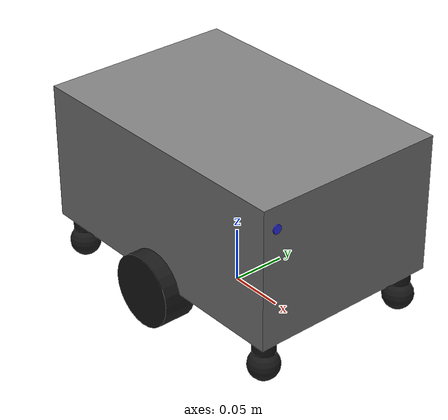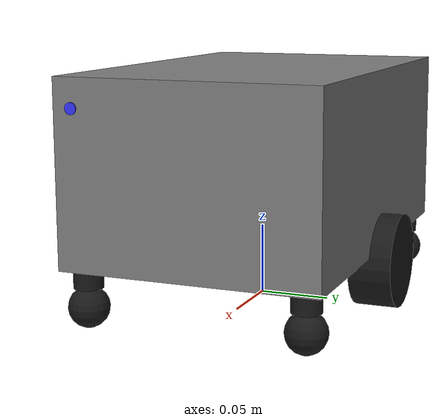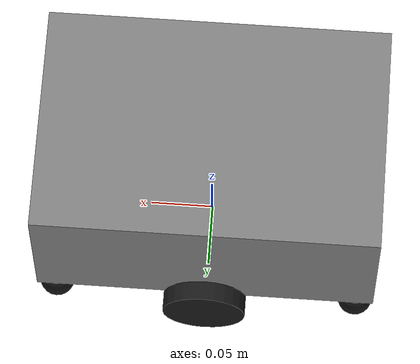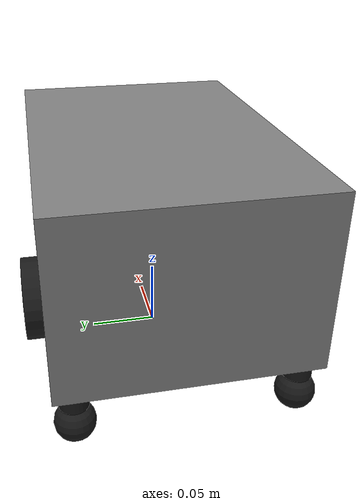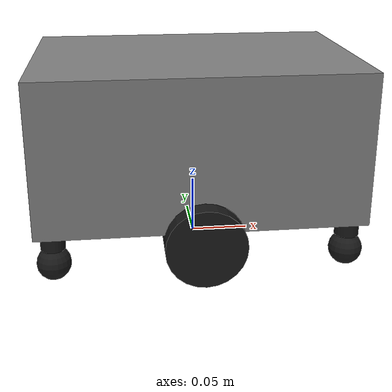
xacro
<?xml version="1.0" encoding="utf-8"?>
<robot xmlns:xacro="http://www.ros.org/wiki/xacro"  name="amr">

    <xacro:arg name="sim_mode" default="False"/>

    <xacro:include filename="inertial_macros.xacro" />
    <xacro:include filename="robot_core.xacro" />
    <xacro:include filename="camera.xacro" />
    <xacro:include filename="ros2_control.xacro" />
</robot>

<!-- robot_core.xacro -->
<robot xmlns:xacro="http://www.ros.org/wiki/xacro">

  <!--  ROBOT PROPERTIES                                            -->
  <xacro:property name="chassis_length"  value="0.27" />
  <xacro:property name="chassis_width"   value="0.18" />
  <xacro:property name="chassis_height"  value="0.127" />
  <xacro:property name="chassis_mass"    value="1.5" />

  <xacro:property name="wheel_radius"    value="0.033" />
  <xacro:property name="wheel_thickness" value="0.03" />
  <xacro:property name="wheel_mass"      value="0.05" />
  <!-- Wheel positions relative to chassis frame (at chassis centre) -->
  <xacro:property name="wheel_x" value="0.0" />
  <xacro:property name="wheel_y" value="0.09" />
  <xacro:property name="wheel_z" value="-0.0705" />

  <xacro:property name="support_radius"  value="0.014" />
  <xacro:property name="support_mass"    value="0.05" />
  <xacro:property name="support_x"       value="0.121" />
  <xacro:property name="support_y"       value="0.076" />
  <xacro:property name="support_z"       value="-0.0895" />

  <xacro:property name="imu_mass"  value="0.01" />
  <xacro:property name="imu_size"  value="0.02" />

  <!-- The robot's base link is placed at the ground contact point -->
  <xacro:property name="base_z_offset" value="0.0" />

  <!--  MATERIALS                                                   -->
  <material name="grey">
    <color rgba="0.5 0.5 0.5 1.0"/>
  </material>
  <material name="black">
    <color rgba="0.1 0.1 0.1 1.0"/>
  </material>
  <material name="white">
    <color rgba="1 1 1 1" />
  </material>
  <material name="orange">
    <color rgba="1 0.3 0.1 1"/>
  </material>
  <material name="blue">
    <color rgba="0.2 0.2 1 1"/>
  </material>
  <material name="red">
    <color rgba="1 0 0 1"/>
  </material>

  <!--  BASE LINKS AND ROOT                                         -->
  <!-- The base_footprint is the virtual ground contact point -->
  <link name="base_footprint" />

  <joint name="base_footprint_joint" type="fixed">
    <parent link="base_footprint" />
    <child link="base_link" />
    <origin xyz="0 0 ${base_z_offset}" rpy="0 0 0" />
  </joint>

  <!-- The base_link is the main frame, located at the chassis centre height? -->
  <!-- We'll place base_link at the chassis centre to simplify transforms. -->
  <!-- But original had base_link at (0,0,0) and chassis joint offset. We'll keep that -->
  <!-- for compatibility: base_link is at (0,0,0) and chassis is offset. -->
  <!-- However, we now have base_footprint at ground, and base_link at z=0. So chassis -->
  <!-- centre is at z=0.115, as before. -->
  <link name="base_link" />

  <!--  CHASSIS                                                     -->
  <joint name="base_link_chassis_joint" type="fixed">
    <parent link="base_link" />
    <child link="chassis" />
    <origin xyz="0 0 ${chassis_height/2 + 0.04}" rpy="0 0 0" />
  </joint>

  <link name="chassis">
    <visual>
      <geometry>
        <box size="${chassis_length} ${chassis_width} ${chassis_height}" />
      </geometry>
      <material name="grey" />
    </visual>
    <collision>
      <geometry>
        <box size="${chassis_length} ${chassis_width} ${chassis_height}" />
      </geometry>
    </collision>
    <xacro:inertial_box mass="${chassis_mass}"
                        x="${chassis_length}"
                        y="${chassis_width}"
                        z="${chassis_height}">
      <origin xyz="0 0 0" rpy="0 0 0"/>
    </xacro:inertial_box>
  </link>

  <gazebo reference="chassis">
    <material>Gazebo/Orange</material>
  </gazebo>

  <!--  MACRO: CREATE A DRIVE WHEEL                                 -->
  <xacro:macro name="drive_wheel" params="name side x y z">
    <!-- side: 'left' or 'right' to set joint axis sign? Actually we use same axis, -->
    <!-- but we can set different orientation? No, we keep same. -->
    <link name="${name}_wheel">
      <visual>
        <geometry>
          <cylinder radius="${wheel_radius}" length="${wheel_thickness}" />
        </geometry>
        <material name="black" />
      </visual>
      <collision>
        <geometry>
          <cylinder radius="${wheel_radius}" length="${wheel_thickness}" />
        </geometry>
      </collision>
      <xacro:inertial_cylinder mass="${wheel_mass}"
                               length="${wheel_thickness}"
                               radius="${wheel_radius}" >
        <origin xyz="0 0 0" rpy="0 0 0"/>
      </xacro:inertial_cylinder>
    </link>

    <joint name="${name}_wheel_joint" type="fixed">
      <parent link="chassis" />
      <child link="${name}_wheel" />
      <!-- The wheel is rotated so its axis aligns with Y (roll direction) -->
      <origin xyz="${x} ${y} ${z}" rpy="${pi/2} 0 0" />
      <axis xyz="0 0 1" />
      <dynamics damping="0.0" friction="0.0" />
    </joint>

    <gazebo reference="${name}_wheel">
      <material>Gazebo/Blue</material>
      <mu1>0.8</mu1>
      <mu2>0.8</mu2>
      <friction>1.0</friction>
    </gazebo>
  </xacro:macro>

  <!-- Instantiate the two drive wheels -->
  <xacro:drive_wheel name="left"  side="left"  x="${wheel_x}" y="-${wheel_y}" z="${wheel_z}" />
  <xacro:drive_wheel name="right" side="right" x="${wheel_x}" y="${wheel_y}"  z="${wheel_z}" />

  <!--  MACRO: CREATE A SUPPORT CASTER (sphere)                     -->
  <xacro:macro name="support_caster" params="name x y z">
    <link name="support_${name}">
      <visual name="support_caster">
        <origin xyz="0 0 0" rpy="0 0 0"/>
        <geometry>
          <sphere radius="${support_radius}" />
        </geometry>
        <material name="black" />
      </visual>
      <visual name="support_caster_stand">
        <origin xyz="0 0 0.02" rpy="0 0 ${-pi/2}"/>
        <geometry>
          <cylinder radius="0.01" length="0.014"/>
        </geometry>
        <material name="black"/>
      </visual>
      <collision>
        <geometry>
          <sphere radius="${support_radius}" />
        </geometry>
      </collision>
      <xacro:inertial_sphere mass="${support_mass}"
                             radius="${support_radius}" >
        <origin xyz="0 0 0" rpy="0 0 0"/>
      </xacro:inertial_sphere>
    </link>

    <joint name="support_${name}_joint" type="fixed">
      <parent link="chassis" />
      <child link="support_${name}" />
      <origin xyz="${x} ${y} ${z}" rpy="0 0 0" />
    </joint>

    <gazebo reference="support_${name}">
      <mu1>0.01</mu1>
      <mu2>0.01</mu2>
      <friction>0.01</friction>
    </gazebo>
  </xacro:macro>

  <!-- Four corners -->
  <xacro:support_caster name="front_left"  x="${support_x}"  y="${support_y}"  z="${support_z}" />
  <xacro:support_caster name="front_right" x="${support_x}"  y="-${support_y}" z="${support_z}" />
  <xacro:support_caster name="back_left"   x="-${support_x}" y="${support_y}"  z="${support_z}" />
  <xacro:support_caster name="back_right"  x="-${support_x}" y="-${support_y}" z="${support_z}" />

  <!--  IMU SENSOR                                                  -->
  <link name="imu_link">
    <visual>
      <geometry>
        <box size="${imu_size} ${imu_size} ${imu_size/4}" />
      </geometry>
      <material name="white" />
    </visual>
    <collision>
      <geometry>
        <box size="${imu_size} ${imu_size} ${imu_size/4}" />
      </geometry>
    </collision>
    <xacro:inertial_box mass="${imu_mass}"
                        x="${imu_size}"
                        y="${imu_size}"
                        z="${imu_size/2.5}" >
      <origin xyz="0 0 0" rpy="0 0 0"/>
    </xacro:inertial_box>
  </link>

  <joint name="imu_joint" type="fixed">
    <parent link="base_link" />
    <child link="imu_link" />
    <origin xyz="0 0 ${chassis_height + 0.034}" rpy="0 0 0" />
  </joint>

  <gazebo reference="imu_link">
    <sensor name="imu_sensor" type="imu">
      <always_on>true</always_on>
      <update_rate>100</update_rate>
      <topic>imu</topic>
      <imu>
        <angular_velocity>
          <x><noise type="gaussian"><mean>0</mean><stddev>0.009</stddev></noise></x>
          <y><noise type="gaussian"><mean>0</mean><stddev>0.009</stddev></noise></y>
          <z><noise type="gaussian"><mean>0</mean><stddev>0.009</stddev></noise></z>
        </angular_velocity>
        <linear_acceleration>
          <x><noise type="gaussian"><mean>0</mean><stddev>0.021</stddev></noise></x>
          <y><noise type="gaussian"><mean>0</mean><stddev>0.021</stddev></noise></y>
          <z><noise type="gaussian"><mean>0</mean><stddev>0.021</stddev></noise></z>
        </linear_acceleration>
      </imu>
      <plugin filename="gz-sim-imu-system" name="gz::sim::systems::Imu">
        <frame_id>imu_link</frame_id>
      </plugin>
    </sensor>
  </gazebo>
</robot>

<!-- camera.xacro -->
<robot xmlns:xacro="http://www.ros.org/wiki/xacro" >

    <joint name="camera_joint" type="fixed">
        <parent link="chassis"/>
        <child link="camera_link"/>
        <origin xyz="0.126 -0.066 0.0435" rpy="0 0 0"/>
    </joint>

    <link name="camera_link">
        <visual>
            <geometry>
                <box size="0.01 0.04 0.025"/>
            </geometry>
            <material name="blue"/>
        </visual>
        <visual>
            <origin xyz="0.005 -0.011 0" rpy="0 ${-pi/2} 0"/>
            <geometry>
                <cylinder radius="0.004" length="0.01"/>
            </geometry>
            <material name="blue"/>
        </visual>
    </link>

    <joint name="camera_optical_joint" type="fixed">
        <parent link="camera_link"/>
        <child link="camera_link_optical"/>
        <origin xyz="0.005 -0.011 0" rpy="${-pi/2}  0 ${-pi/2}"/>
    </joint>

    <link name="camera_link_optical"></link>

    <gazebo reference="camera_link">
        <material>Gazebo/Black</material>

        <sensor name="camera" type="camera">
            <pose>0 0 0 0 0 0</pose>
            <visualize>true</visualize>
            <update_rate>10</update_rate>
            <topic>/camera/image_raw</topic>
            <camera>
                <!-- {to change} -->
                <horizontal_fov>1.089</horizontal_fov>
                <!-- {end changes} -->
                <image>
                    <format>R8G8B8</format>
                    <width>640</width>
                    <height>480</height>
                </image>
                <clip>
                    <near>0.05</near>
                    <far>8.0</far>
                </clip>
            </camera>
        </sensor>
    </gazebo>
</robot>
